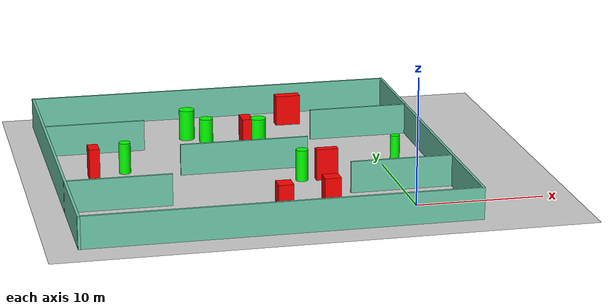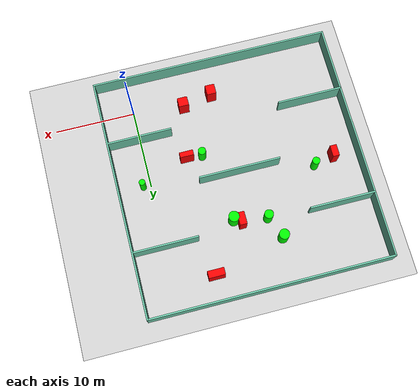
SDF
<sdf version="1.7">
 <world name="default">
  <light name="sun" type="directional">
   <pose>0 0 10 0 -0 0</pose>
   <diffuse>0.8 0.8 0.8 1</diffuse>
   <specular>0.2 0.2 0.2 1</specular>
   <attenuation>
    <range>1000</range>
    <constant>0.9</constant>
    <linear>0.01</linear>
    <quadratic>0.001</quadratic>
   </attenuation>
   <direction>-0.5 0.1 -0.9</direction>
   <spot><inner_angle>0</inner_angle><outer_angle>0</outer_angle><falloff>0</falloff></spot>
  </light>
  <model name="ground_plane">
   <static>1</static>
   <link name="link">
    <collision name="collision">
     <geometry><plane><normal>0 0 1</normal><size>100 100</size></plane></geometry>
     <surface>
      <contact><collide_bitmask>65535</collide_bitmask></contact>
      <friction><ode><mu>100</mu><mu2>50</mu2></ode></friction>
     </surface>
    </collision>
    <visual name="visual">
     <cast_shadows>0</cast_shadows>
     <geometry><plane><normal>0 0 1</normal><size>100 100</size></plane></geometry>
     <material>
      <script><uri>file://media/materials/scripts/gazebo.material</uri><name>Gazebo/Grey</name></script>
     </material>
    </visual>
   </link>
  </model>
  <gravity>0 0 -9.8</gravity>
  <magnetic_field>6e-06 2.3e-05 -4.2e-05</magnetic_field>
  <atmosphere type="adiabatic"/>
  <physics type="ode">
   <max_step_size>0.001</max_step_size>
   <real_time_factor>1</real_time_factor>
   <real_time_update_rate>1000</real_time_update_rate>
  </physics>
  <scene><ambient>0.4 0.4 0.4 1</ambient><background>0.7 0.7 0.7 1</background><shadows>1</shadows></scene>
  <spherical_coordinates>
   <surface_model>EARTH_WGS84</surface_model>
   <latitude_deg>0</latitude_deg>
   <longitude_deg>0</longitude_deg>
   <elevation>0</elevation>
   <heading_deg>0</heading_deg>
  </spherical_coordinates>
  <model name="my_base_walls">
   <link name="Wall_10">
    <collision name="Wall_10_Collision">
     <geometry><box><size>8.2 0.2 2.5</size></box></geometry>
     <pose>0 0 1.25 0 -0 0</pose>
    </collision>
    <visual name="Wall_10_Visual">
     <pose>0 0 1.25 0 -0 0</pose>
     <geometry><box><size>8.2 0.2 2.5</size></box></geometry>
     <material>
      <script><uri>file://media/materials/scripts/gazebo.material</uri><name>Gazebo/Grey</name></script>
      <ambient>0.435294 0.796078 0.67451 1</ambient>
     </material>
     <meta><layer>0</layer></meta>
    </visual>
    <pose>-11 -7 0 0 -0 0</pose>
   </link>
   <link name="Wall_12">
    <collision name="Wall_12_Collision">
     <geometry><box><size>8.2 0.2 2.5</size></box></geometry>
     <pose>0 0 1.25 0 -0 0</pose>
    </collision>
    <visual name="Wall_12_Visual">
     <pose>0 0 1.25 0 -0 0</pose>
     <geometry><box><size>8.2 0.2 2.5</size></box></geometry>
     <material>
      <script><uri>file://media/materials/scripts/gazebo.material</uri><name>Gazebo/Grey</name></script>
      <ambient>0.435294 0.796078 0.67451 1</ambient>
     </material>
     <meta><layer>0</layer></meta>
    </visual>
    <pose>-11 7 0 0 -0 0</pose>
   </link>
   <link name="Wall_14">
    <collision name="Wall_14_Collision">
     <geometry><box><size>8.2 0.2 2.5</size></box></geometry>
     <pose>0 0 1.25 0 -0 0</pose>
    </collision>
    <visual name="Wall_14_Visual">
     <pose>0 0 1.25 0 -0 0</pose>
     <geometry><box><size>8.2 0.2 2.5</size></box></geometry>
     <material>
      <script><uri>file://media/materials/scripts/gazebo.material</uri><name>Gazebo/Grey</name></script>
      <ambient>0.435294 0.796078 0.67451 1</ambient>
     </material>
     <meta><layer>0</layer></meta>
    </visual>
    <pose>11 7 0 0 -0 3.14159</pose>
   </link>
   <link name="Wall_16">
    <collision name="Wall_16_Collision">
     <geometry><box><size>10.2 0.2 2.5</size></box></geometry>
     <pose>0 0 1.25 0 -0 0</pose>
    </collision>
    <visual name="Wall_16_Visual">
     <pose>0 0 1.25 0 -0 0</pose>
     <geometry><box><size>10.2 0.2 2.5</size></box></geometry>
     <material>
      <script><uri>file://media/materials/scripts/gazebo.material</uri><name>Gazebo/Grey</name></script>
      <ambient>0.435294 0.796078 0.67451 1</ambient>
     </material>
     <meta><layer>0</layer></meta>
    </visual>
    <pose>0 0 0 0 -0 3.14159</pose>
   </link>
   <link name="Wall_2">
    <collision name="Wall_2_Collision">
     <geometry><box><size>30.2 0.2 2.5</size></box></geometry>
     <pose>0 0 1.25 0 -0 0</pose>
    </collision>
    <visual name="Wall_2_Visual">
     <pose>0 0 1.25 0 -0 0</pose>
     <geometry><box><size>30.2 0.2 2.5</size></box></geometry>
     <material>
      <script><uri>file://media/materials/scripts/gazebo.material</uri><name>Gazebo/Grey</name></script>
      <ambient>0.435294 0.796078 0.67451 1</ambient>
     </material>
     <meta><layer>0</layer></meta>
    </visual>
    <pose>0 -15 0 0 -0 3.14159</pose>
   </link>
   <link name="Wall_3">
    <collision name="Wall_3_Collision">
     <geometry><box><size>30.2 0.2 2.5</size></box></geometry>
     <pose>0 0 1.25 0 -0 0</pose>
    </collision>
    <visual name="Wall_3_Visual">
     <pose>0 0 1.25 0 -0 0</pose>
     <geometry><box><size>30.2 0.2 2.5</size></box></geometry>
     <material>
      <script><uri>file://media/materials/scripts/gazebo.material</uri><name>Gazebo/Grey</name></script>
      <ambient>0.435294 0.796078 0.67451 1</ambient>
     </material>
     <meta><layer>0</layer></meta>
    </visual>
    <pose>-15 0 0 0 -0 1.5708</pose>
   </link>
   <link name="Wall_4">
    <collision name="Wall_4_Collision">
     <geometry><box><size>30.2 0.2 2.5</size></box></geometry>
     <pose>0 0 1.25 0 -0 0</pose>
    </collision>
    <visual name="Wall_4_Visual">
     <pose>0 0 1.25 0 -0 0</pose>
     <geometry><box><size>30.2 0.2 2.5</size></box></geometry>
     <material>
      <script><uri>file://media/materials/scripts/gazebo.material</uri><name>Gazebo/Grey</name></script>
      <ambient>0.435294 0.796078 0.67451 1</ambient>
     </material>
     <meta><layer>0</layer></meta>
    </visual>
    <pose>0 15 0 0 -0 0</pose>
   </link>
   <link name="Wall_6">
    <collision name="Wall_6_Collision">
     <geometry><box><size>30.2 0.2 2.5</size></box></geometry>
     <pose>0 0 1.25 0 -0 0</pose>
    </collision>
    <visual name="Wall_6_Visual">
     <pose>0 0 1.25 0 -0 0</pose>
     <geometry><box><size>30.2 0.2 2.5</size></box></geometry>
     <material>
      <script><uri>file://media/materials/scripts/gazebo.material</uri><name>Gazebo/Grey</name></script>
      <ambient>0.435294 0.796078 0.67451 1</ambient>
     </material>
     <meta><layer>0</layer></meta>
    </visual>
    <pose>15 0 0 0 -0 1.5708</pose>
   </link>
   <link name="Wall_8">
    <collision name="Wall_8_Collision">
     <geometry><box><size>8.2 0.2 2.5</size></box></geometry>
     <pose>0 0 1.25 0 -0 0</pose>
    </collision>
    <visual name="Wall_8_Visual">
     <pose>0 0 1.25 0 -0 0</pose>
     <geometry><box><size>8.2 0.2 2.5</size></box></geometry>
     <material>
      <script><uri>file://media/materials/scripts/gazebo.material</uri><name>Gazebo/Grey</name></script>
      <ambient>0.435294 0.796078 0.67451 1</ambient>
     </material>
     <meta><layer>0</layer></meta>
    </visual>
    <pose>11 -7 0 0 -0 3.14159</pose>
   </link>
   <static>1</static>
   <pose>-11 11 0 0 -0 0</pose>
  </model>
  <model name="cylinder1">
   <static>1</static>
   <link name="link">
    <inertial>
     <mass>1</mass>
     <inertia><ixx>0.5</ixx><ixy>0</ixy><ixz>0</ixz><iyy>0.5</iyy><iyz>0</iyz><izz>1</izz></inertia>
    </inertial>
    <collision name="collision">
     <geometry><cylinder><radius>0.3746452337980451</radius><length>2.5</length></cylinder></geometry>
    </collision>
    <visual name="visual">
     <geometry><cylinder><radius>0.3746452337980451</radius><length>2.5</length></cylinder></geometry>
     <material>
      <ambient>0 1 0 1</ambient>
      <diffuse>0 1 0 1</diffuse>
      <specular>0.1 0.1 0.1 1</specular>
      <emissive>0 0 0 0</emissive>
     </material>
    </visual>
   </link>
   <pose>0.9419491561043536 9.859761444297348 1.25 0 0 0</pose>
  </model>
  <model name="cylinder2">
   <static>1</static>
   <link name="link">
    <inertial>
     <mass>1</mass>
     <inertia><ixx>0.5</ixx><ixy>0</ixy><ixz>0</ixz><iyy>0.5</iyy><iyz>0</iyz><izz>1</izz></inertia>
    </inertial>
    <collision name="collision">
     <geometry><cylinder><radius>0.46453832916088844</radius><length>2.5</length></cylinder></geometry>
    </collision>
    <visual name="visual">
     <geometry><cylinder><radius>0.46453832916088844</radius><length>2.5</length></cylinder></geometry>
     <material>
      <ambient>0 1 0 1</ambient>
      <diffuse>0 1 0 1</diffuse>
      <specular>0.1 0.1 0.1 1</specular>
      <emissive>0 0 0 0</emissive>
     </material>
    </visual>
   </link>
   <pose>-20.287766257004876 12.490025577998974 1.25 0 0 0</pose>
  </model>
  <model name="cylinder3">
   <static>1</static>
   <link name="link">
    <inertial>
     <mass>1</mass>
     <inertia><ixx>0.5</ixx><ixy>0</ixy><ixz>0</ixz><iyy>0.5</iyy><iyz>0</iyz><izz>1</izz></inertia>
    </inertial>
    <collision name="collision">
     <geometry><cylinder><radius>0.47960093365329715</radius><length>2.5</length></cylinder></geometry>
    </collision>
    <visual name="visual">
     <geometry><cylinder><radius>0.47960093365329715</radius><length>2.5</length></cylinder></geometry>
     <material>
      <ambient>0 1 0 1</ambient>
      <diffuse>0 1 0 1</diffuse>
      <specular>0.1 0.1 0.1 1</specular>
      <emissive>0 0 0 0</emissive>
     </material>
    </visual>
   </link>
   <pose>-7.074560626342571 7.790483817433003 1.25 0 0 0</pose>
  </model>
  <model name="cylinder4">
   <static>1</static>
   <link name="link">
    <inertial>
     <mass>1</mass>
     <inertia><ixx>0.5</ixx><ixy>0</ixy><ixz>0</ixz><iyy>0.5</iyy><iyz>0</iyz><izz>1</izz></inertia>
    </inertial>
    <collision name="collision">
     <geometry><cylinder><radius>0.6329529687999997</radius><length>2.5</length></cylinder></geometry>
    </collision>
    <visual name="visual">
     <geometry><cylinder><radius>0.6329529687999997</radius><length>2.5</length></cylinder></geometry>
     <material>
      <ambient>0 1 0 1</ambient>
      <diffuse>0 1 0 1</diffuse>
      <specular>0.1 0.1 0.1 1</specular>
      <emissive>0 0 0 0</emissive>
     </material>
    </visual>
   </link>
   <pose>-13.997567641036257 20.294851412919563 1.25 0 0 0</pose>
  </model>
  <model name="cylinder5">
   <static>1</static>
   <link name="link">
    <inertial>
     <mass>1</mass>
     <inertia><ixx>0.5</ixx><ixy>0</ixy><ixz>0</ixz><iyy>0.5</iyy><iyz>0</iyz><izz>1</izz></inertia>
    </inertial>
    <collision name="collision">
     <geometry><cylinder><radius>0.6563034915924446</radius><length>2.5</length></cylinder></geometry>
    </collision>
    <visual name="visual">
     <geometry><cylinder><radius>0.6563034915924446</radius><length>2.5</length></cylinder></geometry>
     <material>
      <ambient>0 1 0 1</ambient>
      <diffuse>0 1 0 1</diffuse>
      <specular>0.1 0.1 0.1 1</specular>
      <emissive>0 0 0 0</emissive>
     </material>
    </visual>
   </link>
   <pose>-8.759557378132904 16.72712604316529 1.25 0 0 0</pose>
  </model>
  <model name="cylinder6">
   <static>1</static>
   <link name="link">
    <inertial>
     <mass>1</mass>
     <inertia><ixx>0.5</ixx><ixy>0</ixy><ixz>0</ixz><iyy>0.5</iyy><iyz>0</iyz><izz>1</izz></inertia>
    </inertial>
    <collision name="collision">
     <geometry><cylinder><radius>0.5544511688881403</radius><length>2.5</length></cylinder></geometry>
    </collision>
    <visual name="visual">
     <geometry><cylinder><radius>0.5544511688881403</radius><length>2.5</length></cylinder></geometry>
     <material>
      <ambient>0 1 0 1</ambient>
      <diffuse>0 1 0 1</diffuse>
      <specular>0.1 0.1 0.1 1</specular>
      <emissive>0 0 0 0</emissive>
     </material>
    </visual>
   </link>
   <pose>-12.883718876566704 17.496879855051944 1.25 0 0 0</pose>
  </model>
  <model name="box1">
   <static>1</static>
   <link name="link">
    <inertial>
     <mass>1</mass>
     <inertia><ixx>0.083</ixx><ixy>0</ixy><ixz>0</ixz><iyy>0.083</iyy><iyz>0</iyz><izz>0.083</izz></inertia>
    </inertial>
    <collision name="collision">
     <geometry><box><size>2.0192226083815807 0.8774549572140782 2.5</size></box></geometry>
    </collision>
    <visual name="visual">
     <geometry><box><size>2.0192226083815807 0.8774549572140782 2.5</size></box></geometry>
     <material>
      <ambient>1 0 0 1</ambient>
      <diffuse>1 0 0 1</diffuse>
      <specular>0.1 0.1 0.1 1</specular>
      <emissive>0 0 0 0</emissive>
     </material>
    </visual>
    <sensor name="my_contact" type="contact">
     <contact><collision>box_collision</collision><topic>__default_topic__</topic></contact>
    </sensor>
   </link>
   <pose>-5.027368159794369 22.744642158382764 1.25 0 0 0</pose>
  </model>
  <model name="box2">
   <static>1</static>
   <link name="link">
    <inertial>
     <mass>1</mass>
     <inertia><ixx>0.083</ixx><ixy>0</ixy><ixz>0</ixz><iyy>0.083</iyy><iyz>0</iyz><izz>0.083</izz></inertia>
    </inertial>
    <collision name="collision">
     <geometry><box><size>0.8142183770967257 1.4287914012400258 2.5</size></box></geometry>
    </collision>
    <visual name="visual">
     <geometry><box><size>0.8142183770967257 1.4287914012400258 2.5</size></box></geometry>
     <material>
      <ambient>1 0 0 1</ambient>
      <diffuse>1 0 0 1</diffuse>
      <specular>0.1 0.1 0.1 1</specular>
      <emissive>0 0 0 0</emissive>
     </material>
    </visual>
    <sensor name="my_contact" type="contact">
     <contact><collision>box_collision</collision><topic>__default_topic__</topic></contact>
    </sensor>
   </link>
   <pose>-22.84515214272398 11.806492321747347 1.25 0 0 0</pose>
  </model>
  <model name="box3">
   <static>1</static>
   <link name="link">
    <inertial>
     <mass>1</mass>
     <inertia><ixx>0.083</ixx><ixy>0</ixy><ixz>0</ixz><iyy>0.083</iyy><iyz>0</iyz><izz>0.083</izz></inertia>
    </inertial>
    <collision name="collision">
     <geometry><box><size>0.8820140460616708 1.55735734664025 2.5</size></box></geometry>
    </collision>
    <visual name="visual">
     <geometry><box><size>0.8820140460616708 1.55735734664025 2.5</size></box></geometry>
     <material>
      <ambient>1 0 0 1</ambient>
      <diffuse>1 0 0 1</diffuse>
      <specular>0.1 0.1 0.1 1</specular>
      <emissive>0 0 0 0</emissive>
     </material>
    </visual>
    <sensor name="my_contact" type="contact">
     <contact><collision>box_collision</collision><topic>__default_topic__</topic></contact>
    </sensor>
   </link>
   <pose>-9.63647289878303 17.173348486656536 1.25 0 0 0</pose>
  </model>
  <model name="box4">
   <static>1</static>
   <link name="link">
    <inertial>
     <mass>1</mass>
     <inertia><ixx>0.083</ixx><ixy>0</ixy><ixz>0</ixz><iyy>0.083</iyy><iyz>0</iyz><izz>0.083</izz></inertia>
    </inertial>
    <collision name="collision">
     <geometry><box><size>1.1754861895936781 1.245289383417692 2.5</size></box></geometry>
    </collision>
    <visual name="visual">
     <geometry><box><size>1.1754861895936781 1.245289383417692 2.5</size></box></geometry>
     <material>
      <ambient>1 0 0 1</ambient>
      <diffuse>1 0 0 1</diffuse>
      <specular>0.1 0.1 0.1 1</specular>
      <emissive>0 0 0 0</emissive>
     </material>
    </visual>
    <sensor name="my_contact" type="contact">
     <contact><collision>box_collision</collision><topic>__default_topic__</topic></contact>
    </sensor>
   </link>
   <pose>-10.109719374740045 0.1685437779374177 1.25 0 0 0</pose>
  </model>
  <model name="box5">
   <static>1</static>
   <link name="link">
    <inertial>
     <mass>1</mass>
     <inertia><ixx>0.083</ixx><ixy>0</ixy><ixz>0</ixz><iyy>0.083</iyy><iyz>0</iyz><izz>0.083</izz></inertia>
    </inertial>
    <collision name="collision">
     <geometry><box><size>1.7149762864422833 0.6450621590209369 2.5</size></box></geometry>
    </collision>
    <visual name="visual">
     <geometry><box><size>1.7149762864422833 0.6450621590209369 2.5</size></box></geometry>
     <material>
      <ambient>1 0 0 1</ambient>
      <diffuse>1 0 0 1</diffuse>
      <specular>0.1 0.1 0.1 1</specular>
      <emissive>0 0 0 0</emissive>
     </material>
    </visual>
    <sensor name="my_contact" type="contact">
     <contact><collision>box_collision</collision><topic>__default_topic__</topic></contact>
    </sensor>
   </link>
   <pose>-5.14213418940691 7.680042656593001 1.25 0 0 0</pose>
  </model>
  <model name="box6">
   <static>1</static>
   <link name="link">
    <inertial>
     <mass>1</mass>
     <inertia><ixx>0.083</ixx><ixy>0</ixy><ixz>0</ixz><iyy>0.083</iyy><iyz>0</iyz><izz>0.083</izz></inertia>
    </inertial>
    <collision name="collision">
     <geometry><box><size>1.258223786449021 1.1432095483665266 2.5</size></box></geometry>
    </collision>
    <visual name="visual">
     <geometry><box><size>1.258223786449021 1.1432095483665266 2.5</size></box></geometry>
     <material>
      <ambient>1 0 0 1</ambient>
      <diffuse>1 0 0 1</diffuse>
      <specular>0.1 0.1 0.1 1</specular>
      <emissive>0 0 0 0</emissive>
     </material>
    </visual>
    <sensor name="my_contact" type="contact">
     <contact><collision>box_collision</collision><topic>__default_topic__</topic></contact>
    </sensor>
   </link>
   <pose>-6.358247453546387 0.9132736074340393 1.25 0 0 0</pose>
  </model>
 </world>
</sdf>
